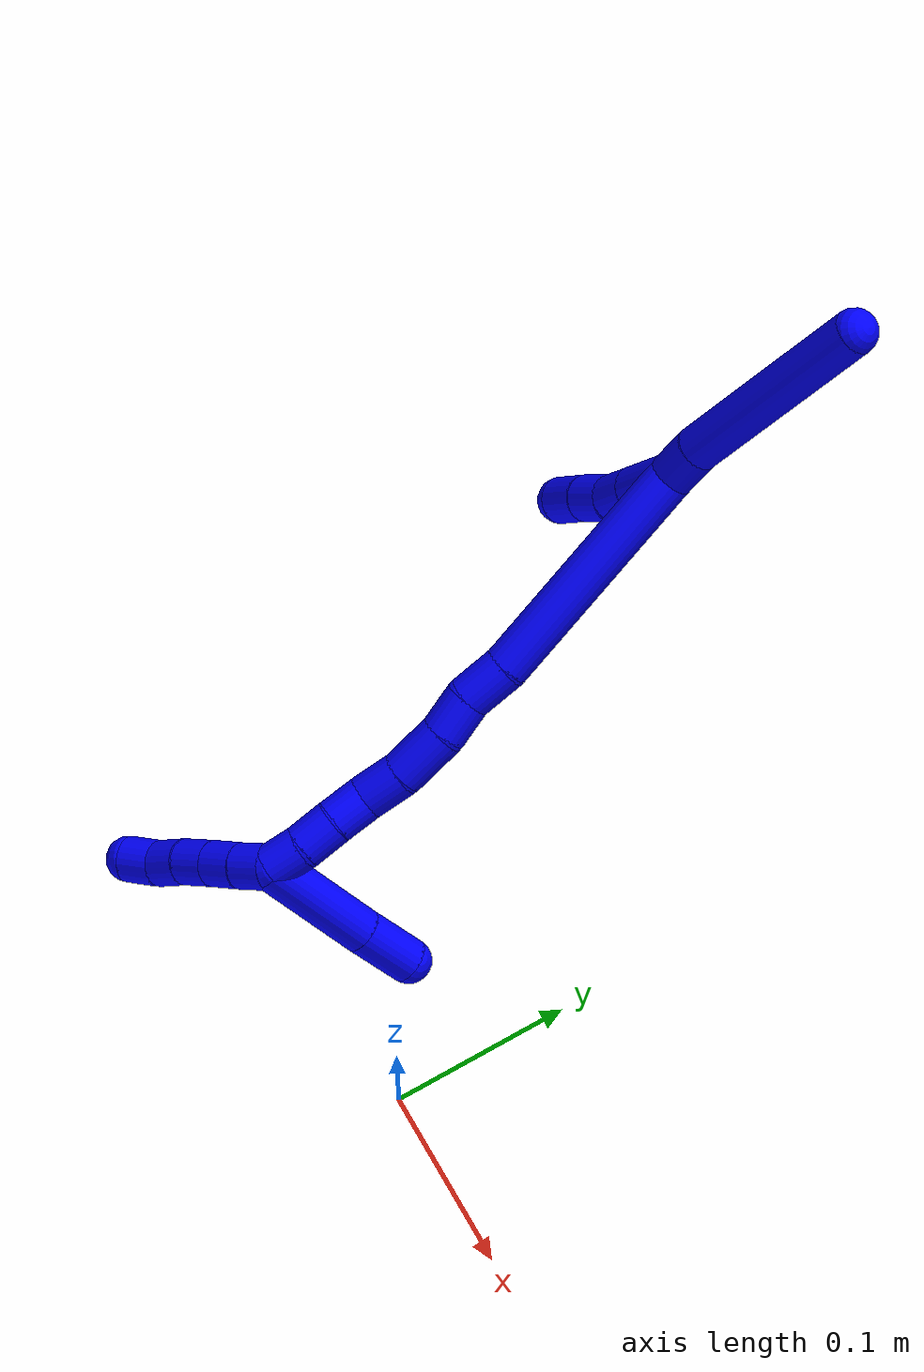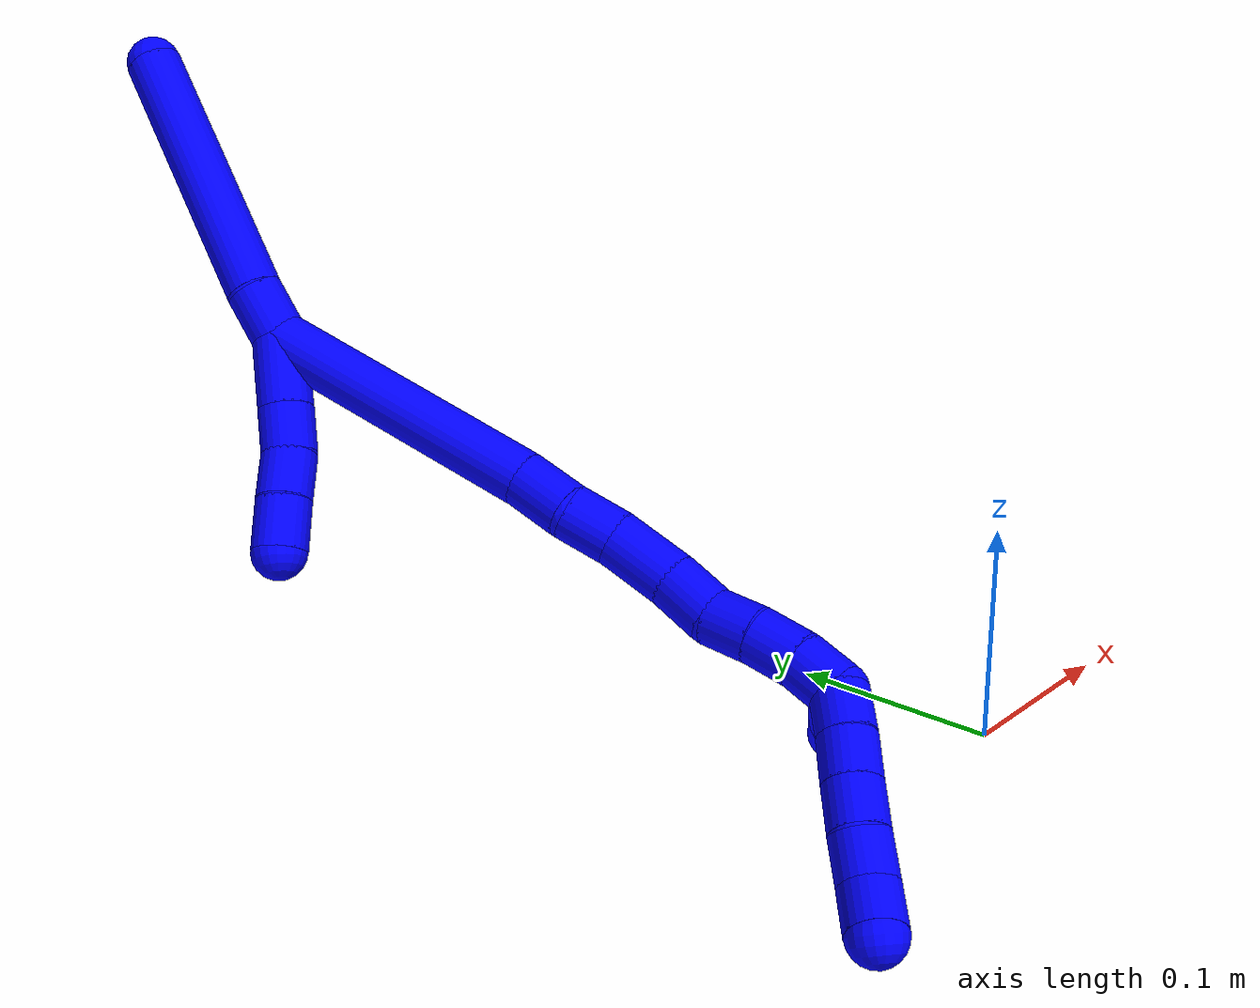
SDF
<sdf version="1.7">
 <world name="default">
  <model name="1">
   <static>0</static>
   <link name="1">
    <collision name="collision-cylinder-e_1_2_8">
     <pose>-0.00396 0.003604 0.011257 -0.309803 -0.3233 0.050917</pose>
     <geometry><cylinder><radius>0.0125</radius><length>0.024931</length></cylinder></geometry>
     <surface>
      <friction><ode><mu>1.16</mu><mu2>1.16</mu2><slip1>0</slip1><slip2>0</slip2></ode></friction>
      <contact><ode><kp>1e+06</kp><kd>1</kd><max_vel>0</max_vel><min_depth>0.001</min_depth></ode></contact>
     </surface>
    </collision>
    <visual name="visual-cylinder-e_1_2_8">
     <pose>-0.00396 0.003604 0.011257 -0.309803 -0.3233 0.050917</pose>
     <geometry><cylinder><radius>0.0125</radius><length>0.024931</length></cylinder></geometry>
     <material><ambient>0 0 1 1</ambient></material>
    </visual>
    <collision name="collision-cylinder-e_2_8_6">
     <pose>-0.020121 0.02464 0.081317 -0.288215 -0.196351 0.028583</pose>
     <geometry><cylinder><radius>0.0125</radius><length>0.125069</length></cylinder></geometry>
     <surface>
      <friction><ode><mu>1.16</mu><mu2>1.16</mu2><slip1>0</slip1><slip2>0</slip2></ode></friction>
      <contact><ode><kp>1e+06</kp><kd>1</kd><max_vel>0</max_vel><min_depth>0.001</min_depth></ode></contact>
     </surface>
    </collision>
    <visual name="visual-cylinder-e_2_8_6">
     <pose>-0.020121 0.02464 0.081317 -0.288215 -0.196351 0.028583</pose>
     <geometry><cylinder><radius>0.0125</radius><length>0.125069</length></cylinder></geometry>
     <material><ambient>0 0 1 1</ambient></material>
    </visual>
    <collision name="collision-cylinder-e_1_2_9">
     <pose>0.000825 -0.000219 -0.016717 3.12848 0.049277 2.62161</pose>
     <geometry><cylinder><radius>0.0125</radius><length>0.033478</length></cylinder></geometry>
     <surface>
      <friction><ode><mu>1.16</mu><mu2>1.16</mu2><slip1>0</slip1><slip2>0</slip2></ode></friction>
      <contact><ode><kp>1e+06</kp><kd>1</kd><max_vel>0</max_vel><min_depth>0.001</min_depth></ode></contact>
     </surface>
    </collision>
    <visual name="visual-cylinder-e_1_2_9">
     <pose>0.000825 -0.000219 -0.016717 3.12848 0.049277 2.62161</pose>
     <geometry><cylinder><radius>0.0125</radius><length>0.033478</length></cylinder></geometry>
     <material><ambient>0 0 1 1</ambient></material>
    </visual>
    <collision name="collision-cylinder-e_2_9_10">
     <pose>0.002146 -0.000535 -0.044102 3.13251 0.046534 2.75625</pose>
     <geometry><cylinder><radius>0.0125</radius><length>0.02136</length></cylinder></geometry>
     <surface>
      <friction><ode><mu>1.16</mu><mu2>1.16</mu2><slip1>0</slip1><slip2>0</slip2></ode></friction>
      <contact><ode><kp>1e+06</kp><kd>1</kd><max_vel>0</max_vel><min_depth>0.001</min_depth></ode></contact>
     </surface>
    </collision>
    <visual name="visual-cylinder-e_2_9_10">
     <pose>0.002146 -0.000535 -0.044102 3.13251 0.046534 2.75625</pose>
     <geometry><cylinder><radius>0.0125</radius><length>0.02136</length></cylinder></geometry>
     <material><ambient>0 0 1 1</ambient></material>
    </visual>
    <collision name="collision-cylinder-e_3_10_11">
     <pose>0.000958 5e-05 -0.065563 -3.07848 -0.154483 2.36706</pose>
     <geometry><cylinder><radius>0.0125</radius><length>0.021891</length></cylinder></geometry>
     <surface>
      <friction><ode><mu>1.16</mu><mu2>1.16</mu2><slip1>0</slip1><slip2>0</slip2></ode></friction>
      <contact><ode><kp>1e+06</kp><kd>1</kd><max_vel>0</max_vel><min_depth>0.001</min_depth></ode></contact>
     </surface>
    </collision>
    <visual name="visual-cylinder-e_3_10_11">
     <pose>0.000958 5e-05 -0.065563 -3.07848 -0.154483 2.36706</pose>
     <geometry><cylinder><radius>0.0125</radius><length>0.021891</length></cylinder></geometry>
     <material><ambient>0 0 1 1</ambient></material>
    </visual>
    <collision name="collision-cylinder-e_4_11_5">
     <pose>-0.001654 0.001748 -0.087911 -3.05386 -0.079857 1.47676</pose>
     <geometry><cylinder><radius>0.0125</radius><length>0.023272</length></cylinder></geometry>
     <surface>
      <friction><ode><mu>1.16</mu><mu2>1.16</mu2><slip1>0</slip1><slip2>0</slip2></ode></friction>
      <contact><ode><kp>1e+06</kp><kd>1</kd><max_vel>0</max_vel><min_depth>0.001</min_depth></ode></contact>
     </surface>
    </collision>
    <visual name="visual-cylinder-e_4_11_5">
     <pose>-0.001654 0.001748 -0.087911 -3.05386 -0.079857 1.47676</pose>
     <geometry><cylinder><radius>0.0125</radius><length>0.023272</length></cylinder></geometry>
     <material><ambient>0 0 1 1</ambient></material>
    </visual>
    <collision name="collision-cylinder-e_1_2_12">
     <pose>0.020731 -0.04858 -0.040141 2.26137 0.317821 0.656044</pose>
     <geometry><cylinder><radius>0.0125</radius><length>0.132682</length></cylinder></geometry>
     <surface>
      <friction><ode><mu>1.16</mu><mu2>1.16</mu2><slip1>0</slip1><slip2>0</slip2></ode></friction>
      <contact><ode><kp>1e+06</kp><kd>1</kd><max_vel>0</max_vel><min_depth>0.001</min_depth></ode></contact>
     </surface>
    </collision>
    <visual name="visual-cylinder-e_1_2_12">
     <pose>0.020731 -0.04858 -0.040141 2.26137 0.317821 0.656044</pose>
     <geometry><cylinder><radius>0.0125</radius><length>0.132682</length></cylinder></geometry>
     <material><ambient>0 0 1 1</ambient></material>
    </visual>
    <collision name="collision-cylinder-e_2_12_13">
     <pose>0.043565 -0.106488 -0.089139 2.33023 0.161976 0.373546</pose>
     <geometry><cylinder><radius>0.0125</radius><length>0.026067</length></cylinder></geometry>
     <surface>
      <friction><ode><mu>1.16</mu><mu2>1.16</mu2><slip1>0</slip1><slip2>0</slip2></ode></friction>
      <contact><ode><kp>1e+06</kp><kd>1</kd><max_vel>0</max_vel><min_depth>0.001</min_depth></ode></contact>
     </surface>
    </collision>
    <visual name="visual-cylinder-e_2_12_13">
     <pose>0.043565 -0.106488 -0.089139 2.33023 0.161976 0.373546</pose>
     <geometry><cylinder><radius>0.0125</radius><length>0.026067</length></cylinder></geometry>
     <material><ambient>0 0 1 1</ambient></material>
    </visual>
    <collision name="collision-cylinder-e_3_13_14">
     <pose>0.050381 -0.123936 -0.104802 2.26855 0.418656 0.854591</pose>
     <geometry><cylinder><radius>0.0125</radius><length>0.023194</length></cylinder></geometry>
     <surface>
      <friction><ode><mu>1.16</mu><mu2>1.16</mu2><slip1>0</slip1><slip2>0</slip2></ode></friction>
      <contact><ode><kp>1e+06</kp><kd>1</kd><max_vel>0</max_vel><min_depth>0.001</min_depth></ode></contact>
     </surface>
    </collision>
    <visual name="visual-cylinder-e_3_13_14">
     <pose>0.050381 -0.123936 -0.104802 2.26855 0.418656 0.854591</pose>
     <geometry><cylinder><radius>0.0125</radius><length>0.023194</length></cylinder></geometry>
     <material><ambient>0 0 1 1</ambient></material>
    </visual>
    <collision name="collision-cylinder-e_4_14_15">
     <pose>0.058892 -0.142627 -0.122313 2.36235 0.247205 0.58761</pose>
     <geometry><cylinder><radius>0.0125</radius><length>0.031032</length></cylinder></geometry>
     <surface>
      <friction><ode><mu>1.16</mu><mu2>1.16</mu2><slip1>0</slip1><slip2>0</slip2></ode></friction>
      <contact><ode><kp>1e+06</kp><kd>1</kd><max_vel>0</max_vel><min_depth>0.001</min_depth></ode></contact>
     </surface>
    </collision>
    <visual name="visual-cylinder-e_4_14_15">
     <pose>0.058892 -0.142627 -0.122313 2.36235 0.247205 0.58761</pose>
     <geometry><cylinder><radius>0.0125</radius><length>0.031032</length></cylinder></geometry>
     <material><ambient>0 0 1 1</ambient></material>
    </visual>
    <collision name="collision-cylinder-e_5_15_16">
     <pose>0.063681 -0.161106 -0.142012 2.42054 0.082626 0.218417</pose>
     <geometry><cylinder><radius>0.0125</radius><length>0.024035</length></cylinder></geometry>
     <surface>
      <friction><ode><mu>1.16</mu><mu2>1.16</mu2><slip1>0</slip1><slip2>0</slip2></ode></friction>
      <contact><ode><kp>1e+06</kp><kd>1</kd><max_vel>0</max_vel><min_depth>0.001</min_depth></ode></contact>
     </surface>
    </collision>
    <visual name="visual-cylinder-e_5_15_16">
     <pose>0.063681 -0.161106 -0.142012 2.42054 0.082626 0.218417</pose>
     <geometry><cylinder><radius>0.0125</radius><length>0.024035</length></cylinder></geometry>
     <material><ambient>0 0 1 1</ambient></material>
    </visual>
    <collision name="collision-cylinder-e_6_16_17">
     <pose>0.065466 -0.17788 -0.156444 2.12076 0.07616 0.135878</pose>
     <geometry><cylinder><radius>0.0125</radius><length>0.020862</length></cylinder></geometry>
     <surface>
      <friction><ode><mu>1.16</mu><mu2>1.16</mu2><slip1>0</slip1><slip2>0</slip2></ode></friction>
      <contact><ode><kp>1e+06</kp><kd>1</kd><max_vel>0</max_vel><min_depth>0.001</min_depth></ode></contact>
     </surface>
    </collision>
    <visual name="visual-cylinder-e_6_16_17">
     <pose>0.065466 -0.17788 -0.156444 2.12076 0.07616 0.135878</pose>
     <geometry><cylinder><radius>0.0125</radius><length>0.020862</length></cylinder></geometry>
     <material><ambient>0 0 1 1</ambient></material>
    </visual>
    <collision name="collision-cylinder-e_7_17_18">
     <pose>0.067592 -0.195196 -0.16835 2.22432 0.124544 0.251237</pose>
     <geometry><cylinder><radius>0.0125</radius><length>0.021449</length></cylinder></geometry>
     <surface>
      <friction><ode><mu>1.16</mu><mu2>1.16</mu2><slip1>0</slip1><slip2>0</slip2></ode></friction>
      <contact><ode><kp>1e+06</kp><kd>1</kd><max_vel>0</max_vel><min_depth>0.001</min_depth></ode></contact>
     </surface>
    </collision>
    <visual name="visual-cylinder-e_7_17_18">
     <pose>0.067592 -0.195196 -0.16835 2.22432 0.124544 0.251237</pose>
     <geometry><cylinder><radius>0.0125</radius><length>0.021449</length></cylinder></geometry>
     <material><ambient>0 0 1 1</ambient></material>
    </visual>
    <collision name="collision-cylinder-e_8_18_1">
     <pose>0.069408 -0.210831 -0.182238 2.37209 0.046808 0.115487</pose>
     <geometry><cylinder><radius>0.0125</radius><length>0.020679</length></cylinder></geometry>
     <surface>
      <friction><ode><mu>1.16</mu><mu2>1.16</mu2><slip1>0</slip1><slip2>0</slip2></ode></friction>
      <contact><ode><kp>1e+06</kp><kd>1</kd><max_vel>0</max_vel><min_depth>0.001</min_depth></ode></contact>
     </surface>
    </collision>
    <visual name="visual-cylinder-e_8_18_1">
     <pose>0.069408 -0.210831 -0.182238 2.37209 0.046808 0.115487</pose>
     <geometry><cylinder><radius>0.0125</radius><length>0.020679</length></cylinder></geometry>
     <material><ambient>0 0 1 1</ambient></material>
    </visual>
    <collision name="collision-cylinder-e_1_1_19">
     <pose>0.100052 -0.204193 -0.190977 -1.66608 1.13931 -1.22763</pose>
     <geometry><cylinder><radius>0.0125</radius><length>0.066407</length></cylinder></geometry>
     <surface>
      <friction><ode><mu>1.16</mu><mu2>1.16</mu2><slip1>0</slip1><slip2>0</slip2></ode></friction>
      <contact><ode><kp>1e+06</kp><kd>1</kd><max_vel>0</max_vel><min_depth>0.001</min_depth></ode></contact>
     </surface>
    </collision>
    <visual name="visual-cylinder-e_1_1_19">
     <pose>0.100052 -0.204193 -0.190977 -1.66608 1.13931 -1.22763</pose>
     <geometry><cylinder><radius>0.0125</radius><length>0.066407</length></cylinder></geometry>
     <material><ambient>0 0 1 1</ambient></material>
    </visual>
    <collision name="collision-cylinder-e_2_19_4">
     <pose>0.145293 -0.182982 -0.192658 -1.61943 1.11481 -1.15895</pose>
     <geometry><cylinder><radius>0.0125</radius><length>0.033593</length></cylinder></geometry>
     <surface>
      <friction><ode><mu>1.16</mu><mu2>1.16</mu2><slip1>0</slip1><slip2>0</slip2></ode></friction>
      <contact><ode><kp>1e+06</kp><kd>1</kd><max_vel>0</max_vel><min_depth>0.001</min_depth></ode></contact>
     </surface>
    </collision>
    <visual name="visual-cylinder-e_2_19_4">
     <pose>0.145293 -0.182982 -0.192658 -1.61943 1.11481 -1.15895</pose>
     <geometry><cylinder><radius>0.0125</radius><length>0.033593</length></cylinder></geometry>
     <material><ambient>0 0 1 1</ambient></material>
    </visual>
    <collision name="collision-cylinder-e_1_1_20">
     <pose>0.066927 -0.219699 -0.199058 2.96454 -0.300982 -2.08247</pose>
     <geometry><cylinder><radius>0.0125</radius><length>0.02</length></cylinder></geometry>
     <surface>
      <friction><ode><mu>1.16</mu><mu2>1.16</mu2><slip1>0</slip1><slip2>0</slip2></ode></friction>
      <contact><ode><kp>1e+06</kp><kd>1</kd><max_vel>0</max_vel><min_depth>0.001</min_depth></ode></contact>
     </surface>
    </collision>
    <visual name="visual-cylinder-e_1_1_20">
     <pose>0.066927 -0.219699 -0.199058 2.96454 -0.300982 -2.08247</pose>
     <geometry><cylinder><radius>0.0125</radius><length>0.02</length></cylinder></geometry>
     <material><ambient>0 0 1 1</ambient></material>
    </visual>
    <collision name="collision-cylinder-e_2_20_21">
     <pose>0.061068 -0.222458 -0.21797 3.0288 -0.293701 -2.41234</pose>
     <geometry><cylinder><radius>0.0125</radius><length>0.02</length></cylinder></geometry>
     <surface>
      <friction><ode><mu>1.16</mu><mu2>1.16</mu2><slip1>0</slip1><slip2>0</slip2></ode></friction>
      <contact><ode><kp>1e+06</kp><kd>1</kd><max_vel>0</max_vel><min_depth>0.001</min_depth></ode></contact>
     </surface>
    </collision>
    <visual name="visual-cylinder-e_2_20_21">
     <pose>0.061068 -0.222458 -0.21797 3.0288 -0.293701 -2.41234</pose>
     <geometry><cylinder><radius>0.0125</radius><length>0.02</length></cylinder></geometry>
     <material><ambient>0 0 1 1</ambient></material>
    </visual>
    <collision name="collision-cylinder-e_3_21_22">
     <pose>0.055377 -0.22481 -0.236997 3.00845 -0.283399 -2.26722</pose>
     <geometry><cylinder><radius>0.0125</radius><length>0.02</length></cylinder></geometry>
     <surface>
      <friction><ode><mu>1.16</mu><mu2>1.16</mu2><slip1>0</slip1><slip2>0</slip2></ode></friction>
      <contact><ode><kp>1e+06</kp><kd>1</kd><max_vel>0</max_vel><min_depth>0.001</min_depth></ode></contact>
     </surface>
    </collision>
    <visual name="visual-cylinder-e_3_21_22">
     <pose>0.055377 -0.22481 -0.236997 3.00845 -0.283399 -2.26722</pose>
     <geometry><cylinder><radius>0.0125</radius><length>0.02</length></cylinder></geometry>
     <material><ambient>0 0 1 1</ambient></material>
    </visual>
    <collision name="collision-cylinder-e_4_22_23">
     <pose>0.050915 -0.227248 -0.256304 3.02336 -0.167308 -1.91232</pose>
     <geometry><cylinder><radius>0.0125</radius><length>0.02</length></cylinder></geometry>
     <surface>
      <friction><ode><mu>1.16</mu><mu2>1.16</mu2><slip1>0</slip1><slip2>0</slip2></ode></friction>
      <contact><ode><kp>1e+06</kp><kd>1</kd><max_vel>0</max_vel><min_depth>0.001</min_depth></ode></contact>
     </surface>
    </collision>
    <visual name="visual-cylinder-e_4_22_23">
     <pose>0.050915 -0.227248 -0.256304 3.02336 -0.167308 -1.91232</pose>
     <geometry><cylinder><radius>0.0125</radius><length>0.02</length></cylinder></geometry>
     <material><ambient>0 0 1 1</ambient></material>
    </visual>
    <collision name="collision-cylinder-e_5_23_3">
     <pose>0.045071 -0.230476 -0.274943 2.9123 -0.431133 -2.17334</pose>
     <geometry><cylinder><radius>0.0125</radius><length>0.02</length></cylinder></geometry>
     <surface>
      <friction><ode><mu>1.16</mu><mu2>1.16</mu2><slip1>0</slip1><slip2>0</slip2></ode></friction>
      <contact><ode><kp>1e+06</kp><kd>1</kd><max_vel>0</max_vel><min_depth>0.001</min_depth></ode></contact>
     </surface>
    </collision>
    <visual name="visual-cylinder-e_5_23_3">
     <pose>0.045071 -0.230476 -0.274943 2.9123 -0.431133 -2.17334</pose>
     <geometry><cylinder><radius>0.0125</radius><length>0.02</length></cylinder></geometry>
     <material><ambient>0 0 1 1</ambient></material>
    </visual>
    <collision name="collision-sphere-3">
     <pose>0.040892 -0.232541 -0.28379 0 -0 0</pose>
     <geometry><sphere><radius>0.0125</radius></sphere></geometry>
     <surface>
      <friction><ode><mu>1.16</mu><mu2>1.16</mu2><slip1>0</slip1><slip2>0</slip2></ode></friction>
      <contact><ode><kp>1e+06</kp><kd>1</kd><max_vel>0</max_vel><min_depth>0.001</min_depth></ode></contact>
     </surface>
    </collision>
    <visual name="visual-sphere-3">
     <pose>0.040892 -0.232541 -0.28379 0 -0 0</pose>
     <geometry><sphere><radius>0.0125</radius></sphere></geometry>
     <material><ambient>0 0 1 1</ambient></material>
    </visual>
    <collision name="collision-sphere-23">
     <pose>0.04925 -0.228411 -0.266096 0 -0 0</pose>
     <geometry><sphere><radius>0.0125</radius></sphere></geometry>
     <surface>
      <friction><ode><mu>1.16</mu><mu2>1.16</mu2><slip1>0</slip1><slip2>0</slip2></ode></friction>
      <contact><ode><kp>1e+06</kp><kd>1</kd><max_vel>0</max_vel><min_depth>0.001</min_depth></ode></contact>
     </surface>
    </collision>
    <visual name="visual-sphere-23">
     <pose>0.04925 -0.228411 -0.266096 0 -0 0</pose>
     <geometry><sphere><radius>0.0125</radius></sphere></geometry>
     <material><ambient>0 0 1 1</ambient></material>
    </visual>
    <collision name="collision-sphere-22">
     <pose>0.052581 -0.226085 -0.246513 0 -0 0</pose>
     <geometry><sphere><radius>0.0125</radius></sphere></geometry>
     <surface>
      <friction><ode><mu>1.16</mu><mu2>1.16</mu2><slip1>0</slip1><slip2>0</slip2></ode></friction>
      <contact><ode><kp>1e+06</kp><kd>1</kd><max_vel>0</max_vel><min_depth>0.001</min_depth></ode></contact>
     </surface>
    </collision>
    <visual name="visual-sphere-22">
     <pose>0.052581 -0.226085 -0.246513 0 -0 0</pose>
     <geometry><sphere><radius>0.0125</radius></sphere></geometry>
     <material><ambient>0 0 1 1</ambient></material>
    </visual>
    <collision name="collision-sphere-21">
     <pose>0.058173 -0.223536 -0.227481 0 -0 0</pose>
     <geometry><sphere><radius>0.0125</radius></sphere></geometry>
     <surface>
      <friction><ode><mu>1.16</mu><mu2>1.16</mu2><slip1>0</slip1><slip2>0</slip2></ode></friction>
      <contact><ode><kp>1e+06</kp><kd>1</kd><max_vel>0</max_vel><min_depth>0.001</min_depth></ode></contact>
     </surface>
    </collision>
    <visual name="visual-sphere-21">
     <pose>0.058173 -0.223536 -0.227481 0 -0 0</pose>
     <geometry><sphere><radius>0.0125</radius></sphere></geometry>
     <material><ambient>0 0 1 1</ambient></material>
    </visual>
    <collision name="collision-sphere-20">
     <pose>0.063963 -0.221381 -0.208459 0 -0 0</pose>
     <geometry><sphere><radius>0.0125</radius></sphere></geometry>
     <surface>
      <friction><ode><mu>1.16</mu><mu2>1.16</mu2><slip1>0</slip1><slip2>0</slip2></ode></friction>
      <contact><ode><kp>1e+06</kp><kd>1</kd><max_vel>0</max_vel><min_depth>0.001</min_depth></ode></contact>
     </surface>
    </collision>
    <visual name="visual-sphere-20">
     <pose>0.063963 -0.221381 -0.208459 0 -0 0</pose>
     <geometry><sphere><radius>0.0125</radius></sphere></geometry>
     <material><ambient>0 0 1 1</ambient></material>
    </visual>
    <collision name="collision-sphere-4">
     <pose>0.160373 -0.175595 -0.193018 0 -0 0</pose>
     <geometry><sphere><radius>0.0125</radius></sphere></geometry>
     <surface>
      <friction><ode><mu>1.16</mu><mu2>1.16</mu2><slip1>0</slip1><slip2>0</slip2></ode></friction>
      <contact><ode><kp>1e+06</kp><kd>1</kd><max_vel>0</max_vel><min_depth>0.001</min_depth></ode></contact>
     </surface>
    </collision>
    <visual name="visual-sphere-4">
     <pose>0.160373 -0.175595 -0.193018 0 -0 0</pose>
     <geometry><sphere><radius>0.0125</radius></sphere></geometry>
     <material><ambient>0 0 1 1</ambient></material>
    </visual>
    <collision name="collision-sphere-11">
     <pose>-0.000726 0.000732 -0.076357 0 -0 0</pose>
     <geometry><sphere><radius>0.0125</radius></sphere></geometry>
     <surface>
      <friction><ode><mu>1.16</mu><mu2>1.16</mu2><slip1>0</slip1><slip2>0</slip2></ode></friction>
      <contact><ode><kp>1e+06</kp><kd>1</kd><max_vel>0</max_vel><min_depth>0.001</min_depth></ode></contact>
     </surface>
    </collision>
    <visual name="visual-sphere-11">
     <pose>-0.000726 0.000732 -0.076357 0 -0 0</pose>
     <geometry><sphere><radius>0.0125</radius></sphere></geometry>
     <material><ambient>0 0 1 1</ambient></material>
    </visual>
    <collision name="collision-sphere-10">
     <pose>0.002643 -0.000632 -0.05477 0 -0 0</pose>
     <geometry><sphere><radius>0.0125</radius></sphere></geometry>
     <surface>
      <friction><ode><mu>1.16</mu><mu2>1.16</mu2><slip1>0</slip1><slip2>0</slip2></ode></friction>
      <contact><ode><kp>1e+06</kp><kd>1</kd><max_vel>0</max_vel><min_depth>0.001</min_depth></ode></contact>
     </surface>
    </collision>
    <visual name="visual-sphere-10">
     <pose>0.002643 -0.000632 -0.05477 0 -0 0</pose>
     <geometry><sphere><radius>0.0125</radius></sphere></geometry>
     <material><ambient>0 0 1 1</ambient></material>
    </visual>
    <collision name="collision-sphere-6">
     <pose>-0.032321 0.042074 0.14012 0 -0 0</pose>
     <geometry><sphere><radius>0.0125</radius></sphere></geometry>
     <surface>
      <friction><ode><mu>1.16</mu><mu2>1.16</mu2><slip1>0</slip1><slip2>0</slip2></ode></friction>
      <contact><ode><kp>1e+06</kp><kd>1</kd><max_vel>0</max_vel><min_depth>0.001</min_depth></ode></contact>
     </surface>
    </collision>
    <visual name="visual-sphere-6">
     <pose>-0.032321 0.042074 0.14012 0 -0 0</pose>
     <geometry><sphere><radius>0.0125</radius></sphere></geometry>
     <material><ambient>0 0 1 1</ambient></material>
    </visual>
    <collision name="collision-sphere-9">
     <pose>0.001649 -0.000438 -0.033434 0 -0 0</pose>
     <geometry><sphere><radius>0.0125</radius></sphere></geometry>
     <surface>
      <friction><ode><mu>1.16</mu><mu2>1.16</mu2><slip1>0</slip1><slip2>0</slip2></ode></friction>
      <contact><ode><kp>1e+06</kp><kd>1</kd><max_vel>0</max_vel><min_depth>0.001</min_depth></ode></contact>
     </surface>
    </collision>
    <visual name="visual-sphere-9">
     <pose>0.001649 -0.000438 -0.033434 0 -0 0</pose>
     <geometry><sphere><radius>0.0125</radius></sphere></geometry>
     <material><ambient>0 0 1 1</ambient></material>
    </visual>
    <collision name="collision-sphere-2">
     <geometry><sphere><radius>0.0125</radius></sphere></geometry>
     <surface>
      <friction><ode><mu>1.16</mu><mu2>1.16</mu2><slip1>0</slip1><slip2>0</slip2></ode></friction>
      <contact><ode><kp>1e+06</kp><kd>1</kd><max_vel>0</max_vel><min_depth>0.001</min_depth></ode></contact>
     </surface>
    </collision>
    <visual name="visual-sphere-2">
     <geometry><sphere><radius>0.0125</radius></sphere></geometry>
     <material><ambient>0 0 1 1</ambient></material>
    </visual>
    <collision name="collision-sphere-19">
     <pose>0.130213 -0.19037 -0.192299 0 -0 0</pose>
     <geometry><sphere><radius>0.0125</radius></sphere></geometry>
     <surface>
      <friction><ode><mu>1.16</mu><mu2>1.16</mu2><slip1>0</slip1><slip2>0</slip2></ode></friction>
      <contact><ode><kp>1e+06</kp><kd>1</kd><max_vel>0</max_vel><min_depth>0.001</min_depth></ode></contact>
     </surface>
    </collision>
    <visual name="visual-sphere-19">
     <pose>0.130213 -0.19037 -0.192299 0 -0 0</pose>
     <geometry><sphere><radius>0.0125</radius></sphere></geometry>
     <material><ambient>0 0 1 1</ambient></material>
    </visual>
    <collision name="collision-sphere-8">
     <pose>-0.007921 0.007207 0.022514 0 -0 0</pose>
     <geometry><sphere><radius>0.0125</radius></sphere></geometry>
     <surface>
      <friction><ode><mu>1.16</mu><mu2>1.16</mu2><slip1>0</slip1><slip2>0</slip2></ode></friction>
      <contact><ode><kp>1e+06</kp><kd>1</kd><max_vel>0</max_vel><min_depth>0.001</min_depth></ode></contact>
     </surface>
    </collision>
    <visual name="visual-sphere-8">
     <pose>-0.007921 0.007207 0.022514 0 -0 0</pose>
     <geometry><sphere><radius>0.0125</radius></sphere></geometry>
     <material><ambient>0 0 1 1</ambient></material>
    </visual>
    <collision name="collision-sphere-5">
     <pose>-0.002582 0.002765 -0.099465 0 -0 0</pose>
     <geometry><sphere><radius>0.0125</radius></sphere></geometry>
     <surface>
      <friction><ode><mu>1.16</mu><mu2>1.16</mu2><slip1>0</slip1><slip2>0</slip2></ode></friction>
      <contact><ode><kp>1e+06</kp><kd>1</kd><max_vel>0</max_vel><min_depth>0.001</min_depth></ode></contact>
     </surface>
    </collision>
    <visual name="visual-sphere-5">
     <pose>-0.002582 0.002765 -0.099465 0 -0 0</pose>
     <geometry><sphere><radius>0.0125</radius></sphere></geometry>
     <material><ambient>0 0 1 1</ambient></material>
    </visual>
    <collision name="collision-sphere-12">
     <pose>0.041463 -0.09716 -0.080282 0 -0 0</pose>
     <geometry><sphere><radius>0.0125</radius></sphere></geometry>
     <surface>
      <friction><ode><mu>1.16</mu><mu2>1.16</mu2><slip1>0</slip1><slip2>0</slip2></ode></friction>
      <contact><ode><kp>1e+06</kp><kd>1</kd><max_vel>0</max_vel><min_depth>0.001</min_depth></ode></contact>
     </surface>
    </collision>
    <visual name="visual-sphere-12">
     <pose>0.041463 -0.09716 -0.080282 0 -0 0</pose>
     <geometry><sphere><radius>0.0125</radius></sphere></geometry>
     <material><ambient>0 0 1 1</ambient></material>
    </visual>
    <collision name="collision-sphere-13">
     <pose>0.045666 -0.115817 -0.097995 0 -0 0</pose>
     <geometry><sphere><radius>0.0125</radius></sphere></geometry>
     <surface>
      <friction><ode><mu>1.16</mu><mu2>1.16</mu2><slip1>0</slip1><slip2>0</slip2></ode></friction>
      <contact><ode><kp>1e+06</kp><kd>1</kd><max_vel>0</max_vel><min_depth>0.001</min_depth></ode></contact>
     </surface>
    </collision>
    <visual name="visual-sphere-13">
     <pose>0.045666 -0.115817 -0.097995 0 -0 0</pose>
     <geometry><sphere><radius>0.0125</radius></sphere></geometry>
     <material><ambient>0 0 1 1</ambient></material>
    </visual>
    <collision name="collision-sphere-14">
     <pose>0.055096 -0.132055 -0.11161 0 -0 0</pose>
     <geometry><sphere><radius>0.0125</radius></sphere></geometry>
     <surface>
      <friction><ode><mu>1.16</mu><mu2>1.16</mu2><slip1>0</slip1><slip2>0</slip2></ode></friction>
      <contact><ode><kp>1e+06</kp><kd>1</kd><max_vel>0</max_vel><min_depth>0.001</min_depth></ode></contact>
     </surface>
    </collision>
    <visual name="visual-sphere-14">
     <pose>0.055096 -0.132055 -0.11161 0 -0 0</pose>
     <geometry><sphere><radius>0.0125</radius></sphere></geometry>
     <material><ambient>0 0 1 1</ambient></material>
    </visual>
    <collision name="collision-sphere-15">
     <pose>0.062689 -0.1532 -0.133017 0 -0 0</pose>
     <geometry><sphere><radius>0.0125</radius></sphere></geometry>
     <surface>
      <friction><ode><mu>1.16</mu><mu2>1.16</mu2><slip1>0</slip1><slip2>0</slip2></ode></friction>
      <contact><ode><kp>1e+06</kp><kd>1</kd><max_vel>0</max_vel><min_depth>0.001</min_depth></ode></contact>
     </surface>
    </collision>
    <visual name="visual-sphere-15">
     <pose>0.062689 -0.1532 -0.133017 0 -0 0</pose>
     <geometry><sphere><radius>0.0125</radius></sphere></geometry>
     <material><ambient>0 0 1 1</ambient></material>
    </visual>
    <collision name="collision-sphere-16">
     <pose>0.064673 -0.169013 -0.151008 0 -0 0</pose>
     <geometry><sphere><radius>0.0125</radius></sphere></geometry>
     <surface>
      <friction><ode><mu>1.16</mu><mu2>1.16</mu2><slip1>0</slip1><slip2>0</slip2></ode></friction>
      <contact><ode><kp>1e+06</kp><kd>1</kd><max_vel>0</max_vel><min_depth>0.001</min_depth></ode></contact>
     </surface>
    </collision>
    <visual name="visual-sphere-16">
     <pose>0.064673 -0.169013 -0.151008 0 -0 0</pose>
     <geometry><sphere><radius>0.0125</radius></sphere></geometry>
     <material><ambient>0 0 1 1</ambient></material>
    </visual>
    <collision name="collision-sphere-17">
     <pose>0.06626 -0.186747 -0.16188 0 -0 0</pose>
     <geometry><sphere><radius>0.0125</radius></sphere></geometry>
     <surface>
      <friction><ode><mu>1.16</mu><mu2>1.16</mu2><slip1>0</slip1><slip2>0</slip2></ode></friction>
      <contact><ode><kp>1e+06</kp><kd>1</kd><max_vel>0</max_vel><min_depth>0.001</min_depth></ode></contact>
     </surface>
    </collision>
    <visual name="visual-sphere-17">
     <pose>0.06626 -0.186747 -0.16188 0 -0 0</pose>
     <geometry><sphere><radius>0.0125</radius></sphere></geometry>
     <material><ambient>0 0 1 1</ambient></material>
    </visual>
    <collision name="collision-sphere-18">
     <pose>0.068924 -0.203644 -0.174819 0 -0 0</pose>
     <geometry><sphere><radius>0.0125</radius></sphere></geometry>
     <surface>
      <friction><ode><mu>1.16</mu><mu2>1.16</mu2><slip1>0</slip1><slip2>0</slip2></ode></friction>
      <contact><ode><kp>1e+06</kp><kd>1</kd><max_vel>0</max_vel><min_depth>0.001</min_depth></ode></contact>
     </surface>
    </collision>
    <visual name="visual-sphere-18">
     <pose>0.068924 -0.203644 -0.174819 0 -0 0</pose>
     <geometry><sphere><radius>0.0125</radius></sphere></geometry>
     <material><ambient>0 0 1 1</ambient></material>
    </visual>
    <collision name="collision-sphere-1">
     <pose>0.069892 -0.218017 -0.189656 0 -0 0</pose>
     <geometry><sphere><radius>0.0125</radius></sphere></geometry>
     <surface>
      <friction><ode><mu>1.16</mu><mu2>1.16</mu2><slip1>0</slip1><slip2>0</slip2></ode></friction>
      <contact><ode><kp>1e+06</kp><kd>1</kd><max_vel>0</max_vel><min_depth>0.001</min_depth></ode></contact>
     </surface>
    </collision>
    <visual name="visual-sphere-1">
     <pose>0.069892 -0.218017 -0.189656 0 -0 0</pose>
     <geometry><sphere><radius>0.0125</radius></sphere></geometry>
     <material><ambient>0 0 1 1</ambient></material>
    </visual>
    <inertial>
     <pose>0.036289 -0.095544 -0.087099 0 -0 0</pose>
     <mass>0.75</mass>
     <inertia><ixx>0.000446</ixx><ixy>0</ixy><ixz>0</ixz><iyy>0.000223</iyy><iyz>0</iyz><izz>2e-05</izz></inertia>
    </inertial>
   </link>
   <pose>-0.182302 0.266721 0.178958 -0.411257 0.471017 0.11315</pose>
  </model>
 </world>
</sdf>
